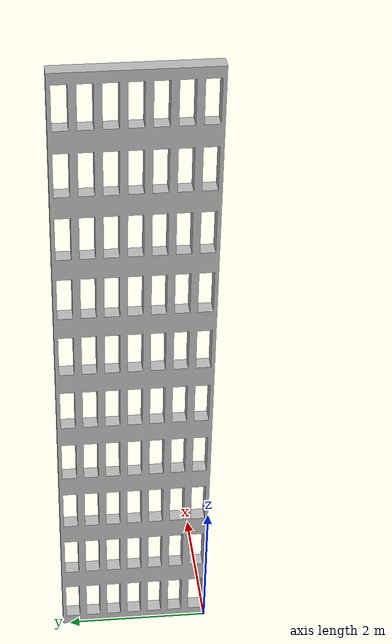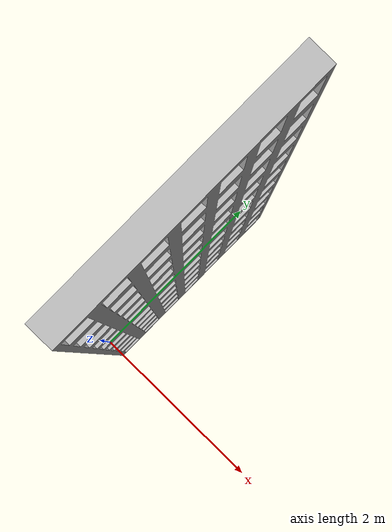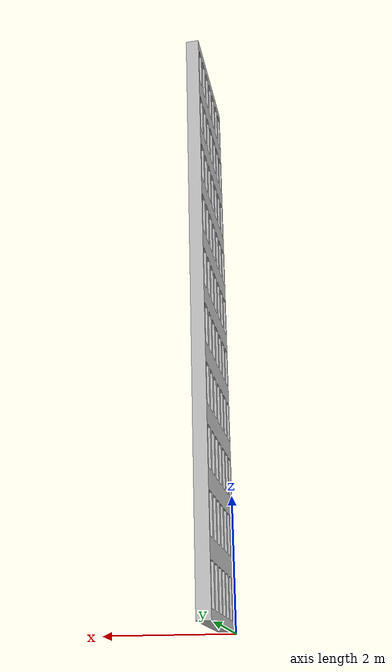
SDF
<?xml version="1.0" ?>
<sdf version="1.5">
  <model name="fence_high">
    <static>true</static>
    <link name="link">
      <pose>0 0 0 0 0 0</pose>
      <inertial>
        <mass>100.0</mass>
        <inertia>
          <ixx>100.0</ixx>
          <ixy>0</ixy>
          <ixz>0</ixz>
          <iyy>100.0</iyy>
          <iyz>0</iyz>
          <izz>100.0</izz>
        </inertia>
      </inertial>

      <collision name="collision">
        <geometry>
          <mesh>
            <uri>model://fence/meshes/fence_10x7.dae</uri>
            <scale>1 1 3</scale>
          </mesh>
        </geometry>
      </collision>

      <visual name="visual">
        <geometry>
          <mesh>
            <uri>model://fence/meshes/fence_10x7.dae</uri>
            <scale>1 1 3</scale>
          </mesh>
        </geometry>
      </visual>

    </link>
  </model>
</sdf>
